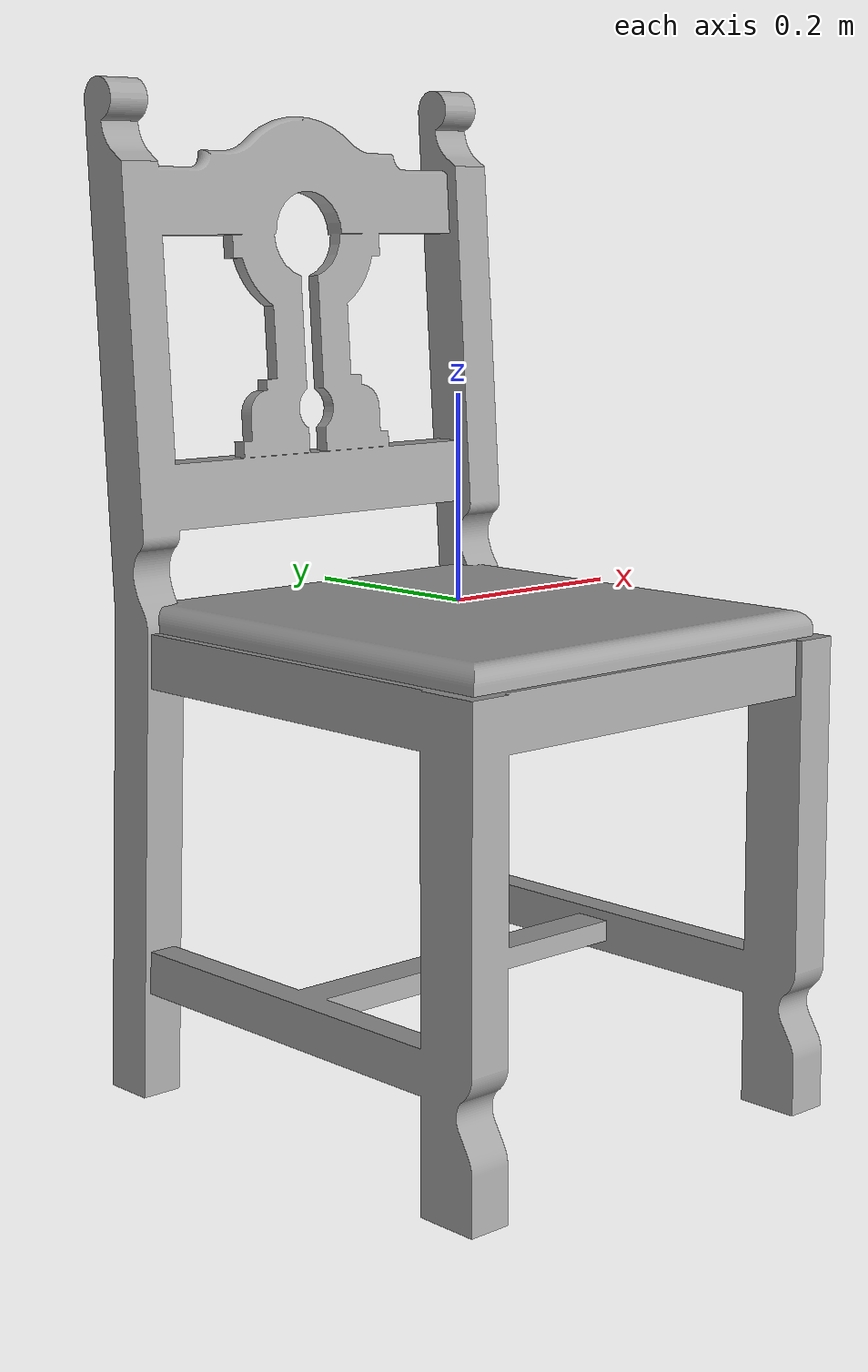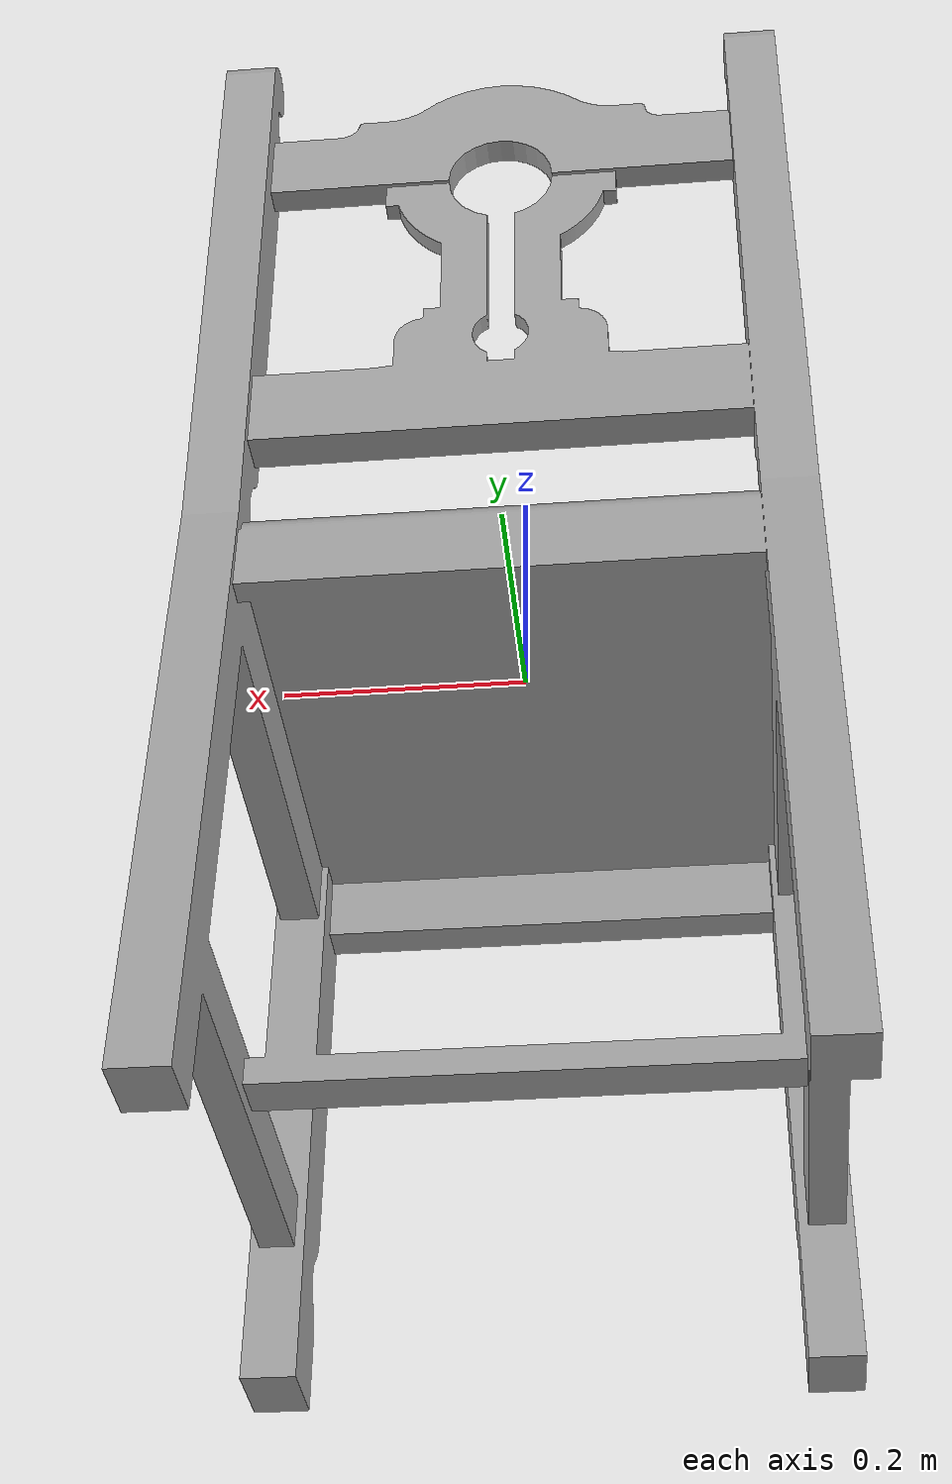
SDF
<?xml version="1.0" ?>
<sdf version="1.5">
  <model name='chair8'>
    <pose>0 0 0 0 0 0</pose>
    <static>1</static>
    <link name='body'>
      <collision name="chair8-coll">
        <pose>0 0 -0.5 0 0 0</pose>
        <geometry>
          <mesh>
            <uri>model://chair8/meshes/chair8.dae</uri>
          </mesh>
        </geometry>
      </collision>
      <visual name='chair8'>
        <cast_shadows>1</cast_shadows>
        <pose>0 0 -0.5 0 0 0</pose>
        <geometry>
          <mesh>
            <uri>model://chair8/meshes/chair8.dae</uri>
          </mesh>
        </geometry>
      </visual>
      <velocity_decay>
        <linear>0</linear>
        <angular>0</angular>
      </velocity_decay>
      <self_collide>0</self_collide>
      <kinematic>0</kinematic>
      <gravity>1</gravity>
    </link>
  </model>

</sdf>
